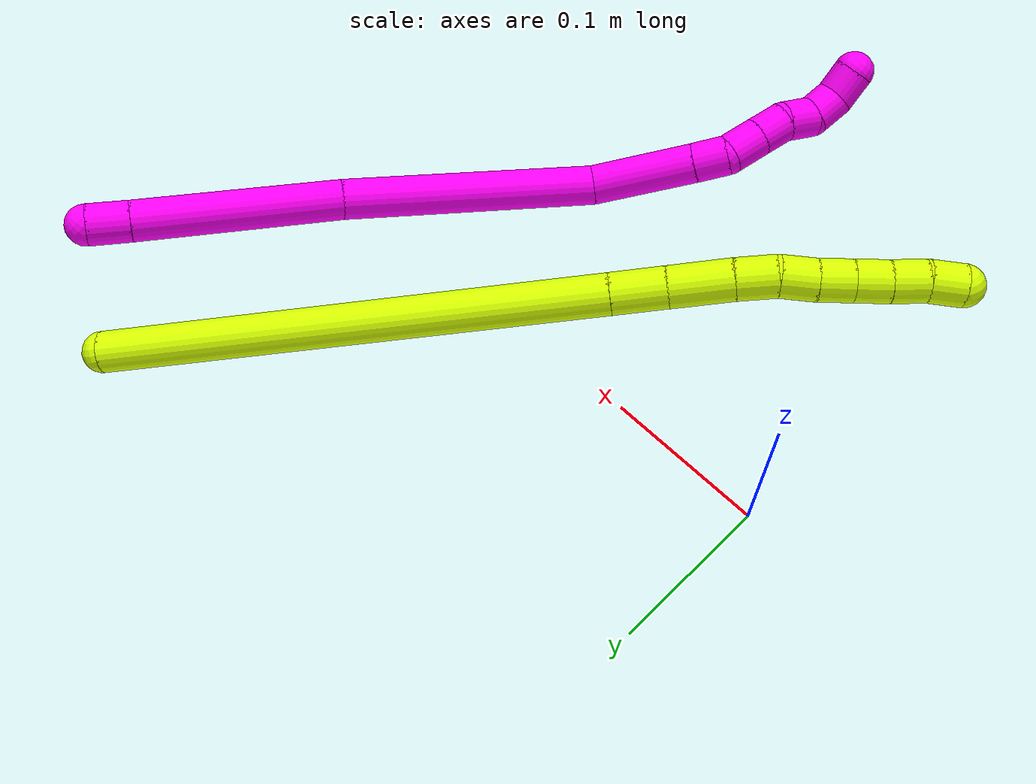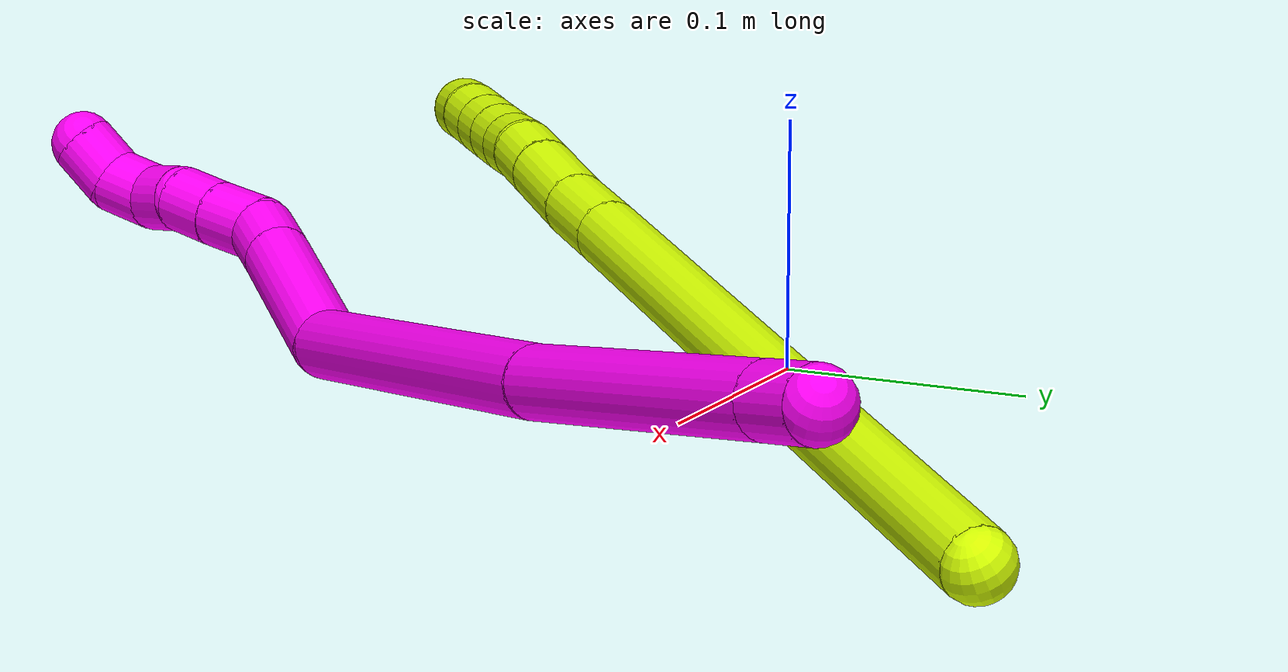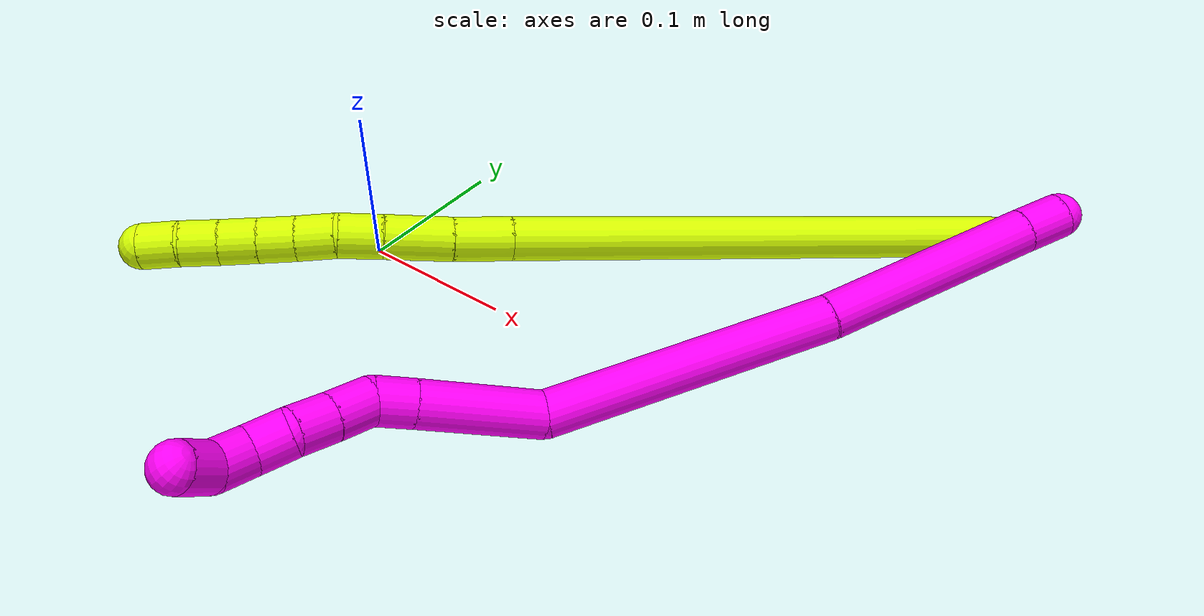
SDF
<sdf version="1.7">
 <world name="default">
  <model name="10">
   <static>0</static>
   <link name="10">
    <collision name="collision-cylinder-e_1_1_4">
     <pose>-0.006059 -0.005855 -0.009158 2.57274 -0.508515 -1.45334</pose>
     <geometry><cylinder><radius>0.0125</radius><length>0.024889</length></cylinder></geometry>
     <surface>
      <friction><ode><mu>1.16</mu><mu2>1.16</mu2><slip1>0</slip1><slip2>0</slip2></ode></friction>
      <contact><ode><kp>1e+06</kp><kd>1</kd><max_vel>0</max_vel><min_depth>0.001</min_depth></ode></contact>
     </surface>
    </collision>
    <visual name="visual-cylinder-e_1_1_4">
     <pose>-0.006059 -0.005855 -0.009158 2.57274 -0.508515 -1.45334</pose>
     <geometry><cylinder><radius>0.0125</radius><length>0.024889</length></cylinder></geometry>
     <material><ambient>1 0 0.964706 1</ambient></material>
    </visual>
    <collision name="collision-cylinder-e_2_4_5">
     <pose>-0.042087 -0.042298 -0.063957 2.55116 -0.499348 -1.39557</pose>
     <geometry><cylinder><radius>0.0125</radius><length>0.12517</length></cylinder></geometry>
     <surface>
      <friction><ode><mu>1.16</mu><mu2>1.16</mu2><slip1>0</slip1><slip2>0</slip2></ode></friction>
      <contact><ode><kp>1e+06</kp><kd>1</kd><max_vel>0</max_vel><min_depth>0.001</min_depth></ode></contact>
     </surface>
    </collision>
    <visual name="visual-cylinder-e_2_4_5">
     <pose>-0.042087 -0.042298 -0.063957 2.55116 -0.499348 -1.39557</pose>
     <geometry><cylinder><radius>0.0125</radius><length>0.12517</length></cylinder></geometry>
     <material><ambient>1 0 0.964706 1</ambient></material>
    </visual>
    <collision name="collision-cylinder-e_3_5_6">
     <pose>-0.115001 -0.106367 -0.168196 2.62249 -0.566706 -1.66287</pose>
     <geometry><cylinder><radius>0.0125</radius><length>0.159987</length></cylinder></geometry>
     <surface>
      <friction><ode><mu>1.16</mu><mu2>1.16</mu2><slip1>0</slip1><slip2>0</slip2></ode></friction>
      <contact><ode><kp>1e+06</kp><kd>1</kd><max_vel>0</max_vel><min_depth>0.001</min_depth></ode></contact>
     </surface>
    </collision>
    <visual name="visual-cylinder-e_3_5_6">
     <pose>-0.115001 -0.106367 -0.168196 2.62249 -0.566706 -1.66287</pose>
     <geometry><cylinder><radius>0.0125</radius><length>0.159987</length></cylinder></geometry>
     <material><ambient>1 0 0.964706 1</ambient></material>
    </visual>
    <collision name="collision-cylinder-e_4_6_7">
     <pose>-0.185957 -0.149936 -0.241185 2.53019 -1.01047 -2.10459</pose>
     <geometry><cylinder><radius>0.0125</radius><length>0.066136</length></cylinder></geometry>
     <surface>
      <friction><ode><mu>1.16</mu><mu2>1.16</mu2><slip1>0</slip1><slip2>0</slip2></ode></friction>
      <contact><ode><kp>1e+06</kp><kd>1</kd><max_vel>0</max_vel><min_depth>0.001</min_depth></ode></contact>
     </surface>
    </collision>
    <visual name="visual-cylinder-e_4_6_7">
     <pose>-0.185957 -0.149936 -0.241185 2.53019 -1.01047 -2.10459</pose>
     <geometry><cylinder><radius>0.0125</radius><length>0.066136</length></cylinder></geometry>
     <material><ambient>1 0 0.964706 1</ambient></material>
    </visual>
    <collision name="collision-cylinder-e_5_7_8">
     <pose>-0.222938 -0.163508 -0.260118 2.48728 -1.00275 -2.03283</pose>
     <geometry><cylinder><radius>0.0125</radius><length>0.02128</length></cylinder></geometry>
     <surface>
      <friction><ode><mu>1.16</mu><mu2>1.16</mu2><slip1>0</slip1><slip2>0</slip2></ode></friction>
      <contact><ode><kp>1e+06</kp><kd>1</kd><max_vel>0</max_vel><min_depth>0.001</min_depth></ode></contact>
     </surface>
    </collision>
    <visual name="visual-cylinder-e_5_7_8">
     <pose>-0.222938 -0.163508 -0.260118 2.48728 -1.00275 -2.03283</pose>
     <geometry><cylinder><radius>0.0125</radius><length>0.02128</length></cylinder></geometry>
     <material><ambient>1 0 0.964706 1</ambient></material>
    </visual>
    <collision name="collision-cylinder-e_6_8_9">
     <pose>-0.237915 -0.175273 -0.26916 2.06857 -0.56756 -0.911905</pose>
     <geometry><cylinder><radius>0.0125</radius><length>0.022354</length></cylinder></geometry>
     <surface>
      <friction><ode><mu>1.16</mu><mu2>1.16</mu2><slip1>0</slip1><slip2>0</slip2></ode></friction>
      <contact><ode><kp>1e+06</kp><kd>1</kd><max_vel>0</max_vel><min_depth>0.001</min_depth></ode></contact>
     </surface>
    </collision>
    <visual name="visual-cylinder-e_6_8_9">
     <pose>-0.237915 -0.175273 -0.26916 2.06857 -0.56756 -0.911905</pose>
     <geometry><cylinder><radius>0.0125</radius><length>0.022354</length></cylinder></geometry>
     <material><ambient>1 0 0.964706 1</ambient></material>
    </visual>
    <collision name="collision-cylinder-e_7_9_10">
     <pose>-0.249603 -0.190841 -0.277607 2.06719 -0.600766 -0.95911</pose>
     <geometry><cylinder><radius>0.0125</radius><length>0.020094</length></cylinder></geometry>
     <surface>
      <friction><ode><mu>1.16</mu><mu2>1.16</mu2><slip1>0</slip1><slip2>0</slip2></ode></friction>
      <contact><ode><kp>1e+06</kp><kd>1</kd><max_vel>0</max_vel><min_depth>0.001</min_depth></ode></contact>
     </surface>
    </collision>
    <visual name="visual-cylinder-e_7_9_10">
     <pose>-0.249603 -0.190841 -0.277607 2.06719 -0.600766 -0.95911</pose>
     <geometry><cylinder><radius>0.0125</radius><length>0.020094</length></cylinder></geometry>
     <material><ambient>1 0 0.964706 1</ambient></material>
    </visual>
    <collision name="collision-cylinder-e_8_10_11">
     <pose>-0.260076 -0.203611 -0.288468 2.47119 -0.49765 -1.2604</pose>
     <geometry><cylinder><radius>0.0125</radius><length>0.020084</length></cylinder></geometry>
     <surface>
      <friction><ode><mu>1.16</mu><mu2>1.16</mu2><slip1>0</slip1><slip2>0</slip2></ode></friction>
      <contact><ode><kp>1e+06</kp><kd>1</kd><max_vel>0</max_vel><min_depth>0.001</min_depth></ode></contact>
     </surface>
    </collision>
    <visual name="visual-cylinder-e_8_10_11">
     <pose>-0.260076 -0.203611 -0.288468 2.47119 -0.49765 -1.2604</pose>
     <geometry><cylinder><radius>0.0125</radius><length>0.020084</length></cylinder></geometry>
     <material><ambient>1 0 0.964706 1</ambient></material>
    </visual>
    <collision name="collision-cylinder-e_9_11_12">
     <pose>-0.270116 -0.217136 -0.298179 1.90544 -0.552252 -0.758494</pose>
     <geometry><cylinder><radius>0.0125</radius><length>0.020003</length></cylinder></geometry>
     <surface>
      <friction><ode><mu>1.16</mu><mu2>1.16</mu2><slip1>0</slip1><slip2>0</slip2></ode></friction>
      <contact><ode><kp>1e+06</kp><kd>1</kd><max_vel>0</max_vel><min_depth>0.001</min_depth></ode></contact>
     </surface>
    </collision>
    <visual name="visual-cylinder-e_9_11_12">
     <pose>-0.270116 -0.217136 -0.298179 1.90544 -0.552252 -0.758494</pose>
     <geometry><cylinder><radius>0.0125</radius><length>0.020003</length></cylinder></geometry>
     <material><ambient>1 0 0.964706 1</ambient></material>
    </visual>
    <collision name="collision-cylinder-e_10_12_2">
     <pose>-0.28243 -0.232066 -0.299346 1.33847 -0.784576 -0.632557</pose>
     <geometry><cylinder><radius>0.0125</radius><length>0.020003</length></cylinder></geometry>
     <surface>
      <friction><ode><mu>1.16</mu><mu2>1.16</mu2><slip1>0</slip1><slip2>0</slip2></ode></friction>
      <contact><ode><kp>1e+06</kp><kd>1</kd><max_vel>0</max_vel><min_depth>0.001</min_depth></ode></contact>
     </surface>
    </collision>
    <visual name="visual-cylinder-e_10_12_2">
     <pose>-0.28243 -0.232066 -0.299346 1.33847 -0.784576 -0.632557</pose>
     <geometry><cylinder><radius>0.0125</radius><length>0.020003</length></cylinder></geometry>
     <material><ambient>1 0 0.964706 1</ambient></material>
    </visual>
    <collision name="collision-sphere-2">
     <pose>-0.289496 -0.238954 -0.297716 0 -0 0</pose>
     <geometry><sphere><radius>0.0125</radius></sphere></geometry>
     <surface>
      <friction><ode><mu>1.16</mu><mu2>1.16</mu2><slip1>0</slip1><slip2>0</slip2></ode></friction>
      <contact><ode><kp>1e+06</kp><kd>1</kd><max_vel>0</max_vel><min_depth>0.001</min_depth></ode></contact>
     </surface>
    </collision>
    <visual name="visual-sphere-2">
     <pose>-0.289496 -0.238954 -0.297716 0 -0 0</pose>
     <geometry><sphere><radius>0.0125</radius></sphere></geometry>
     <material><ambient>1 0 0.964706 1</ambient></material>
    </visual>
    <collision name="collision-sphere-12">
     <pose>-0.275363 -0.225178 -0.300975 0 -0 0</pose>
     <geometry><sphere><radius>0.0125</radius></sphere></geometry>
     <surface>
      <friction><ode><mu>1.16</mu><mu2>1.16</mu2><slip1>0</slip1><slip2>0</slip2></ode></friction>
      <contact><ode><kp>1e+06</kp><kd>1</kd><max_vel>0</max_vel><min_depth>0.001</min_depth></ode></contact>
     </surface>
    </collision>
    <visual name="visual-sphere-12">
     <pose>-0.275363 -0.225178 -0.300975 0 -0 0</pose>
     <geometry><sphere><radius>0.0125</radius></sphere></geometry>
     <material><ambient>1 0 0.964706 1</ambient></material>
    </visual>
    <collision name="collision-sphere-11">
     <pose>-0.26487 -0.209093 -0.295382 0 -0 0</pose>
     <geometry><sphere><radius>0.0125</radius></sphere></geometry>
     <surface>
      <friction><ode><mu>1.16</mu><mu2>1.16</mu2><slip1>0</slip1><slip2>0</slip2></ode></friction>
      <contact><ode><kp>1e+06</kp><kd>1</kd><max_vel>0</max_vel><min_depth>0.001</min_depth></ode></contact>
     </surface>
    </collision>
    <visual name="visual-sphere-11">
     <pose>-0.26487 -0.209093 -0.295382 0 -0 0</pose>
     <geometry><sphere><radius>0.0125</radius></sphere></geometry>
     <material><ambient>1 0 0.964706 1</ambient></material>
    </visual>
    <collision name="collision-sphere-10">
     <pose>-0.255282 -0.198129 -0.281554 0 -0 0</pose>
     <geometry><sphere><radius>0.0125</radius></sphere></geometry>
     <surface>
      <friction><ode><mu>1.16</mu><mu2>1.16</mu2><slip1>0</slip1><slip2>0</slip2></ode></friction>
      <contact><ode><kp>1e+06</kp><kd>1</kd><max_vel>0</max_vel><min_depth>0.001</min_depth></ode></contact>
     </surface>
    </collision>
    <visual name="visual-sphere-10">
     <pose>-0.255282 -0.198129 -0.281554 0 -0 0</pose>
     <geometry><sphere><radius>0.0125</radius></sphere></geometry>
     <material><ambient>1 0 0.964706 1</ambient></material>
    </visual>
    <collision name="collision-sphere-9">
     <pose>-0.243924 -0.183554 -0.27366 0 -0 0</pose>
     <geometry><sphere><radius>0.0125</radius></sphere></geometry>
     <surface>
      <friction><ode><mu>1.16</mu><mu2>1.16</mu2><slip1>0</slip1><slip2>0</slip2></ode></friction>
      <contact><ode><kp>1e+06</kp><kd>1</kd><max_vel>0</max_vel><min_depth>0.001</min_depth></ode></contact>
     </surface>
    </collision>
    <visual name="visual-sphere-9">
     <pose>-0.243924 -0.183554 -0.27366 0 -0 0</pose>
     <geometry><sphere><radius>0.0125</radius></sphere></geometry>
     <material><ambient>1 0 0.964706 1</ambient></material>
    </visual>
    <collision name="collision-sphere-4">
     <pose>-0.012118 -0.01171 -0.018316 0 -0 0</pose>
     <geometry><sphere><radius>0.0125</radius></sphere></geometry>
     <surface>
      <friction><ode><mu>1.16</mu><mu2>1.16</mu2><slip1>0</slip1><slip2>0</slip2></ode></friction>
      <contact><ode><kp>1e+06</kp><kd>1</kd><max_vel>0</max_vel><min_depth>0.001</min_depth></ode></contact>
     </surface>
    </collision>
    <visual name="visual-sphere-4">
     <pose>-0.012118 -0.01171 -0.018316 0 -0 0</pose>
     <geometry><sphere><radius>0.0125</radius></sphere></geometry>
     <material><ambient>1 0 0.964706 1</ambient></material>
    </visual>
    <collision name="collision-sphere-1">
     <geometry><sphere><radius>0.0125</radius></sphere></geometry>
     <surface>
      <friction><ode><mu>1.16</mu><mu2>1.16</mu2><slip1>0</slip1><slip2>0</slip2></ode></friction>
      <contact><ode><kp>1e+06</kp><kd>1</kd><max_vel>0</max_vel><min_depth>0.001</min_depth></ode></contact>
     </surface>
    </collision>
    <visual name="visual-sphere-1">
     <geometry><sphere><radius>0.0125</radius></sphere></geometry>
     <material><ambient>1 0 0.964706 1</ambient></material>
    </visual>
    <collision name="collision-sphere-8">
     <pose>-0.231907 -0.166992 -0.26466 0 -0 0</pose>
     <geometry><sphere><radius>0.0125</radius></sphere></geometry>
     <surface>
      <friction><ode><mu>1.16</mu><mu2>1.16</mu2><slip1>0</slip1><slip2>0</slip2></ode></friction>
      <contact><ode><kp>1e+06</kp><kd>1</kd><max_vel>0</max_vel><min_depth>0.001</min_depth></ode></contact>
     </surface>
    </collision>
    <visual name="visual-sphere-8">
     <pose>-0.231907 -0.166992 -0.26466 0 -0 0</pose>
     <geometry><sphere><radius>0.0125</radius></sphere></geometry>
     <material><ambient>1 0 0.964706 1</ambient></material>
    </visual>
    <collision name="collision-sphere-5">
     <pose>-0.072056 -0.072886 -0.109598 0 -0 0</pose>
     <geometry><sphere><radius>0.0125</radius></sphere></geometry>
     <surface>
      <friction><ode><mu>1.16</mu><mu2>1.16</mu2><slip1>0</slip1><slip2>0</slip2></ode></friction>
      <contact><ode><kp>1e+06</kp><kd>1</kd><max_vel>0</max_vel><min_depth>0.001</min_depth></ode></contact>
     </surface>
    </collision>
    <visual name="visual-sphere-5">
     <pose>-0.072056 -0.072886 -0.109598 0 -0 0</pose>
     <geometry><sphere><radius>0.0125</radius></sphere></geometry>
     <material><ambient>1 0 0.964706 1</ambient></material>
    </visual>
    <collision name="collision-sphere-6">
     <pose>-0.157946 -0.139848 -0.226794 0 -0 0</pose>
     <geometry><sphere><radius>0.0125</radius></sphere></geometry>
     <surface>
      <friction><ode><mu>1.16</mu><mu2>1.16</mu2><slip1>0</slip1><slip2>0</slip2></ode></friction>
      <contact><ode><kp>1e+06</kp><kd>1</kd><max_vel>0</max_vel><min_depth>0.001</min_depth></ode></contact>
     </surface>
    </collision>
    <visual name="visual-sphere-6">
     <pose>-0.157946 -0.139848 -0.226794 0 -0 0</pose>
     <geometry><sphere><radius>0.0125</radius></sphere></geometry>
     <material><ambient>1 0 0.964706 1</ambient></material>
    </visual>
    <collision name="collision-sphere-7">
     <pose>-0.213969 -0.160024 -0.255576 0 -0 0</pose>
     <geometry><sphere><radius>0.0125</radius></sphere></geometry>
     <surface>
      <friction><ode><mu>1.16</mu><mu2>1.16</mu2><slip1>0</slip1><slip2>0</slip2></ode></friction>
      <contact><ode><kp>1e+06</kp><kd>1</kd><max_vel>0</max_vel><min_depth>0.001</min_depth></ode></contact>
     </surface>
    </collision>
    <visual name="visual-sphere-7">
     <pose>-0.213969 -0.160024 -0.255576 0 -0 0</pose>
     <geometry><sphere><radius>0.0125</radius></sphere></geometry>
     <material><ambient>1 0 0.964706 1</ambient></material>
    </visual>
    <inertial>
     <pose>-0.13494 -0.113361 -0.17194 0 -0 0</pose>
     <mass>0.5</mass>
     <inertia>
      <ixx>-0.000485</ixx>
      <ixy>0</ixy>
      <ixz>0</ixz>
      <iyy>-0.000311</iyy>
      <iyz>0</iyz>
      <izz>0.000516</izz>
     </inertia>
    </inertial>
   </link>
   <pose>0.371741 0.17453 0.085948 -0.12097 0.760778 0.442568</pose>
  </model>
  <model name="15">
   <static>0</static>
   <link name="15">
    <collision name="collision-cylinder-e_1_1_4">
     <pose>-0.097438 -0.113111 -0.02435 1.78283 -0.699914 -0.848883</pose>
     <geometry><cylinder><radius>0.0125</radius><length>0.302531</length></cylinder></geometry>
     <surface>
      <friction><ode><mu>1.16</mu><mu2>1.16</mu2><slip1>0</slip1><slip2>0</slip2></ode></friction>
      <contact><ode><kp>1e+06</kp><kd>1</kd><max_vel>0</max_vel><min_depth>0.001</min_depth></ode></contact>
     </surface>
    </collision>
    <visual name="visual-cylinder-e_1_1_4">
     <pose>-0.097438 -0.113111 -0.02435 1.78283 -0.699914 -0.848883</pose>
     <geometry><cylinder><radius>0.0125</radius><length>0.302531</length></cylinder></geometry>
     <material><ambient>0.835294 1 0 1</ambient></material>
    </visual>
    <collision name="collision-cylinder-e_2_4_5">
     <pose>-0.205341 -0.238569 -0.051338 1.78137 -0.692122 -0.838685</pose>
     <geometry><cylinder><radius>0.0125</radius><length>0.032796</length></cylinder></geometry>
     <surface>
      <friction><ode><mu>1.16</mu><mu2>1.16</mu2><slip1>0</slip1><slip2>0</slip2></ode></friction>
      <contact><ode><kp>1e+06</kp><kd>1</kd><max_vel>0</max_vel><min_depth>0.001</min_depth></ode></contact>
     </surface>
    </collision>
    <visual name="visual-cylinder-e_2_4_5">
     <pose>-0.205341 -0.238569 -0.051338 1.78137 -0.692122 -0.838685</pose>
     <geometry><cylinder><radius>0.0125</radius><length>0.032796</length></cylinder></geometry>
     <material><ambient>0.835294 1 0 1</ambient></material>
    </visual>
    <collision name="collision-cylinder-e_3_5_6">
     <pose>-0.228512 -0.264661 -0.056655 1.76318 -0.736832 -0.876259</pose>
     <geometry><cylinder><radius>0.0125</radius><length>0.037821</length></cylinder></geometry>
     <surface>
      <friction><ode><mu>1.16</mu><mu2>1.16</mu2><slip1>0</slip1><slip2>0</slip2></ode></friction>
      <contact><ode><kp>1e+06</kp><kd>1</kd><max_vel>0</max_vel><min_depth>0.001</min_depth></ode></contact>
     </surface>
    </collision>
    <visual name="visual-cylinder-e_3_5_6">
     <pose>-0.228512 -0.264661 -0.056655 1.76318 -0.736832 -0.876259</pose>
     <geometry><cylinder><radius>0.0125</radius><length>0.037821</length></cylinder></geometry>
     <material><ambient>0.835294 1 0 1</ambient></material>
    </visual>
    <collision name="collision-cylinder-e_4_6_7">
     <pose>-0.249382 -0.287079 -0.061526 1.81853 -0.739797 -0.924136</pose>
     <geometry><cylinder><radius>0.0125</radius><length>0.024219</length></cylinder></geometry>
     <surface>
      <friction><ode><mu>1.16</mu><mu2>1.16</mu2><slip1>0</slip1><slip2>0</slip2></ode></friction>
      <contact><ode><kp>1e+06</kp><kd>1</kd><max_vel>0</max_vel><min_depth>0.001</min_depth></ode></contact>
     </surface>
    </collision>
    <visual name="visual-cylinder-e_4_6_7">
     <pose>-0.249382 -0.287079 -0.061526 1.81853 -0.739797 -0.924136</pose>
     <geometry><cylinder><radius>0.0125</radius><length>0.024219</length></cylinder></geometry>
     <material><ambient>0.835294 1 0 1</ambient></material>
    </visual>
    <collision name="collision-cylinder-e_5_7_8">
     <pose>-0.264286 -0.303085 -0.067825 2.08117 -0.675847 -1.08004</pose>
     <geometry><cylinder><radius>0.0125</radius><length>0.02155</length></cylinder></geometry>
     <surface>
      <friction><ode><mu>1.16</mu><mu2>1.16</mu2><slip1>0</slip1><slip2>0</slip2></ode></friction>
      <contact><ode><kp>1e+06</kp><kd>1</kd><max_vel>0</max_vel><min_depth>0.001</min_depth></ode></contact>
     </surface>
    </collision>
    <visual name="visual-cylinder-e_5_7_8">
     <pose>-0.264286 -0.303085 -0.067825 2.08117 -0.675847 -1.08004</pose>
     <geometry><cylinder><radius>0.0125</radius><length>0.02155</length></cylinder></geometry>
     <material><ambient>0.835294 1 0 1</ambient></material>
    </visual>
    <collision name="collision-cylinder-e_6_8_9">
     <pose>-0.277425 -0.317619 -0.074971 1.97033 -0.68616 -0.988053</pose>
     <geometry><cylinder><radius>0.0125</radius><length>0.020199</length></cylinder></geometry>
     <surface>
      <friction><ode><mu>1.16</mu><mu2>1.16</mu2><slip1>0</slip1><slip2>0</slip2></ode></friction>
      <contact><ode><kp>1e+06</kp><kd>1</kd><max_vel>0</max_vel><min_depth>0.001</min_depth></ode></contact>
     </surface>
    </collision>
    <visual name="visual-cylinder-e_6_8_9">
     <pose>-0.277425 -0.317619 -0.074971 1.97033 -0.68616 -0.988053</pose>
     <geometry><cylinder><radius>0.0125</radius><length>0.020199</length></cylinder></geometry>
     <material><ambient>0.835294 1 0 1</ambient></material>
    </visual>
    <collision name="collision-cylinder-e_7_9_10">
     <pose>-0.29028 -0.332012 -0.081065 1.97225 -0.690421 -0.99541</pose>
     <geometry><cylinder><radius>0.0125</radius><length>0.020274</length></cylinder></geometry>
     <surface>
      <friction><ode><mu>1.16</mu><mu2>1.16</mu2><slip1>0</slip1><slip2>0</slip2></ode></friction>
      <contact><ode><kp>1e+06</kp><kd>1</kd><max_vel>0</max_vel><min_depth>0.001</min_depth></ode></contact>
     </surface>
    </collision>
    <visual name="visual-cylinder-e_7_9_10">
     <pose>-0.29028 -0.332012 -0.081065 1.97225 -0.690421 -0.99541</pose>
     <geometry><cylinder><radius>0.0125</radius><length>0.020274</length></cylinder></geometry>
     <material><ambient>0.835294 1 0 1</ambient></material>
    </visual>
    <collision name="collision-cylinder-e_8_10_11">
     <pose>-0.303287 -0.346611 -0.08675 1.91216 -0.694931 -0.947986</pose>
     <geometry><cylinder><radius>0.0125</radius><length>0.020462</length></cylinder></geometry>
     <surface>
      <friction><ode><mu>1.16</mu><mu2>1.16</mu2><slip1>0</slip1><slip2>0</slip2></ode></friction>
      <contact><ode><kp>1e+06</kp><kd>1</kd><max_vel>0</max_vel><min_depth>0.001</min_depth></ode></contact>
     </surface>
    </collision>
    <visual name="visual-cylinder-e_8_10_11">
     <pose>-0.303287 -0.346611 -0.08675 1.91216 -0.694931 -0.947986</pose>
     <geometry><cylinder><radius>0.0125</radius><length>0.020462</length></cylinder></geometry>
     <material><ambient>0.835294 1 0 1</ambient></material>
    </visual>
    <collision name="collision-cylinder-e_9_11_2">
     <pose>-0.316163 -0.36072 -0.093445 2.11582 -0.678781 -1.11995</pose>
     <geometry><cylinder><radius>0.0125</radius><length>0.020148</length></cylinder></geometry>
     <surface>
      <friction><ode><mu>1.16</mu><mu2>1.16</mu2><slip1>0</slip1><slip2>0</slip2></ode></friction>
      <contact><ode><kp>1e+06</kp><kd>1</kd><max_vel>0</max_vel><min_depth>0.001</min_depth></ode></contact>
     </surface>
    </collision>
    <visual name="visual-cylinder-e_9_11_2">
     <pose>-0.316163 -0.36072 -0.093445 2.11582 -0.678781 -1.11995</pose>
     <geometry><cylinder><radius>0.0125</radius><length>0.020148</length></cylinder></geometry>
     <material><ambient>0.835294 1 0 1</ambient></material>
    </visual>
    <collision name="collision-sphere-2">
     <pose>-0.322488 -0.367425 -0.09751 0 -0 0</pose>
     <geometry><sphere><radius>0.0125</radius></sphere></geometry>
     <surface>
      <friction><ode><mu>1.16</mu><mu2>1.16</mu2><slip1>0</slip1><slip2>0</slip2></ode></friction>
      <contact><ode><kp>1e+06</kp><kd>1</kd><max_vel>0</max_vel><min_depth>0.001</min_depth></ode></contact>
     </surface>
    </collision>
    <visual name="visual-sphere-2">
     <pose>-0.322488 -0.367425 -0.09751 0 -0 0</pose>
     <geometry><sphere><radius>0.0125</radius></sphere></geometry>
     <material><ambient>0.835294 1 0 1</ambient></material>
    </visual>
    <collision name="collision-sphere-11">
     <pose>-0.309839 -0.354016 -0.08938 0 -0 0</pose>
     <geometry><sphere><radius>0.0125</radius></sphere></geometry>
     <surface>
      <friction><ode><mu>1.16</mu><mu2>1.16</mu2><slip1>0</slip1><slip2>0</slip2></ode></friction>
      <contact><ode><kp>1e+06</kp><kd>1</kd><max_vel>0</max_vel><min_depth>0.001</min_depth></ode></contact>
     </surface>
    </collision>
    <visual name="visual-sphere-11">
     <pose>-0.309839 -0.354016 -0.08938 0 -0 0</pose>
     <geometry><sphere><radius>0.0125</radius></sphere></geometry>
     <material><ambient>0.835294 1 0 1</ambient></material>
    </visual>
    <collision name="collision-sphere-10">
     <pose>-0.296736 -0.339206 -0.084119 0 -0 0</pose>
     <geometry><sphere><radius>0.0125</radius></sphere></geometry>
     <surface>
      <friction><ode><mu>1.16</mu><mu2>1.16</mu2><slip1>0</slip1><slip2>0</slip2></ode></friction>
      <contact><ode><kp>1e+06</kp><kd>1</kd><max_vel>0</max_vel><min_depth>0.001</min_depth></ode></contact>
     </surface>
    </collision>
    <visual name="visual-sphere-10">
     <pose>-0.296736 -0.339206 -0.084119 0 -0 0</pose>
     <geometry><sphere><radius>0.0125</radius></sphere></geometry>
     <material><ambient>0.835294 1 0 1</ambient></material>
    </visual>
    <collision name="collision-sphere-9">
     <pose>-0.283824 -0.324818 -0.078011 0 -0 0</pose>
     <geometry><sphere><radius>0.0125</radius></sphere></geometry>
     <surface>
      <friction><ode><mu>1.16</mu><mu2>1.16</mu2><slip1>0</slip1><slip2>0</slip2></ode></friction>
      <contact><ode><kp>1e+06</kp><kd>1</kd><max_vel>0</max_vel><min_depth>0.001</min_depth></ode></contact>
     </surface>
    </collision>
    <visual name="visual-sphere-9">
     <pose>-0.283824 -0.324818 -0.078011 0 -0 0</pose>
     <geometry><sphere><radius>0.0125</radius></sphere></geometry>
     <material><ambient>0.835294 1 0 1</ambient></material>
    </visual>
    <collision name="collision-sphere-4">
     <pose>-0.194876 -0.226223 -0.048699 0 -0 0</pose>
     <geometry><sphere><radius>0.0125</radius></sphere></geometry>
     <surface>
      <friction><ode><mu>1.16</mu><mu2>1.16</mu2><slip1>0</slip1><slip2>0</slip2></ode></friction>
      <contact><ode><kp>1e+06</kp><kd>1</kd><max_vel>0</max_vel><min_depth>0.001</min_depth></ode></contact>
     </surface>
    </collision>
    <visual name="visual-sphere-4">
     <pose>-0.194876 -0.226223 -0.048699 0 -0 0</pose>
     <geometry><sphere><radius>0.0125</radius></sphere></geometry>
     <material><ambient>0.835294 1 0 1</ambient></material>
    </visual>
    <collision name="collision-sphere-1">
     <geometry><sphere><radius>0.0125</radius></sphere></geometry>
     <surface>
      <friction><ode><mu>1.16</mu><mu2>1.16</mu2><slip1>0</slip1><slip2>0</slip2></ode></friction>
      <contact><ode><kp>1e+06</kp><kd>1</kd><max_vel>0</max_vel><min_depth>0.001</min_depth></ode></contact>
     </surface>
    </collision>
    <visual name="visual-sphere-1">
     <geometry><sphere><radius>0.0125</radius></sphere></geometry>
     <material><ambient>0.835294 1 0 1</ambient></material>
    </visual>
    <collision name="collision-sphere-8">
     <pose>-0.271027 -0.31042 -0.071932 0 -0 0</pose>
     <geometry><sphere><radius>0.0125</radius></sphere></geometry>
     <surface>
      <friction><ode><mu>1.16</mu><mu2>1.16</mu2><slip1>0</slip1><slip2>0</slip2></ode></friction>
      <contact><ode><kp>1e+06</kp><kd>1</kd><max_vel>0</max_vel><min_depth>0.001</min_depth></ode></contact>
     </surface>
    </collision>
    <visual name="visual-sphere-8">
     <pose>-0.271027 -0.31042 -0.071932 0 -0 0</pose>
     <geometry><sphere><radius>0.0125</radius></sphere></geometry>
     <material><ambient>0.835294 1 0 1</ambient></material>
    </visual>
    <collision name="collision-sphere-5">
     <pose>-0.215805 -0.250915 -0.053977 0 -0 0</pose>
     <geometry><sphere><radius>0.0125</radius></sphere></geometry>
     <surface>
      <friction><ode><mu>1.16</mu><mu2>1.16</mu2><slip1>0</slip1><slip2>0</slip2></ode></friction>
      <contact><ode><kp>1e+06</kp><kd>1</kd><max_vel>0</max_vel><min_depth>0.001</min_depth></ode></contact>
     </surface>
    </collision>
    <visual name="visual-sphere-5">
     <pose>-0.215805 -0.250915 -0.053977 0 -0 0</pose>
     <geometry><sphere><radius>0.0125</radius></sphere></geometry>
     <material><ambient>0.835294 1 0 1</ambient></material>
    </visual>
    <collision name="collision-sphere-6">
     <pose>-0.241219 -0.278408 -0.059333 0 -0 0</pose>
     <geometry><sphere><radius>0.0125</radius></sphere></geometry>
     <surface>
      <friction><ode><mu>1.16</mu><mu2>1.16</mu2><slip1>0</slip1><slip2>0</slip2></ode></friction>
      <contact><ode><kp>1e+06</kp><kd>1</kd><max_vel>0</max_vel><min_depth>0.001</min_depth></ode></contact>
     </surface>
    </collision>
    <visual name="visual-sphere-6">
     <pose>-0.241219 -0.278408 -0.059333 0 -0 0</pose>
     <geometry><sphere><radius>0.0125</radius></sphere></geometry>
     <material><ambient>0.835294 1 0 1</ambient></material>
    </visual>
    <collision name="collision-sphere-7">
     <pose>-0.257546 -0.29575 -0.063719 0 -0 0</pose>
     <geometry><sphere><radius>0.0125</radius></sphere></geometry>
     <surface>
      <friction><ode><mu>1.16</mu><mu2>1.16</mu2><slip1>0</slip1><slip2>0</slip2></ode></friction>
      <contact><ode><kp>1e+06</kp><kd>1</kd><max_vel>0</max_vel><min_depth>0.001</min_depth></ode></contact>
     </surface>
    </collision>
    <visual name="visual-sphere-7">
     <pose>-0.257546 -0.29575 -0.063719 0 -0 0</pose>
     <geometry><sphere><radius>0.0125</radius></sphere></geometry>
     <material><ambient>0.835294 1 0 1</ambient></material>
    </visual>
    <inertial>
     <pose>-0.16131 -0.18609 -0.041921 0 -0 0</pose>
     <mass>0.5</mass>
     <inertia>
      <ixx>-0.000187</ixx>
      <ixy>0</ixy>
      <ixz>0</ixz>
      <iyy>-0.000592</iyy>
      <iyz>0</iyz>
      <izz>0.003248</izz>
     </inertia>
    </inertial>
   </link>
   <pose>0.329834 0.2083 0.032234 0.117866 0.579912 0.017213</pose>
  </model>
 </world>
</sdf>
